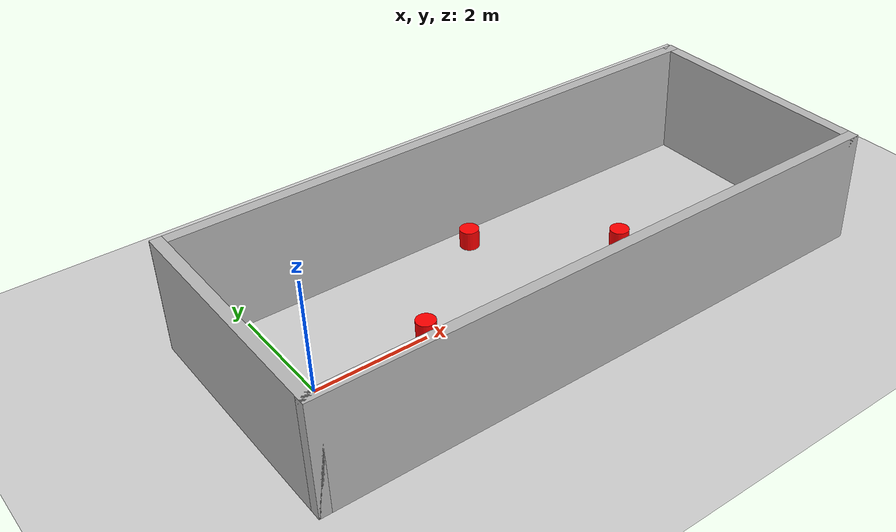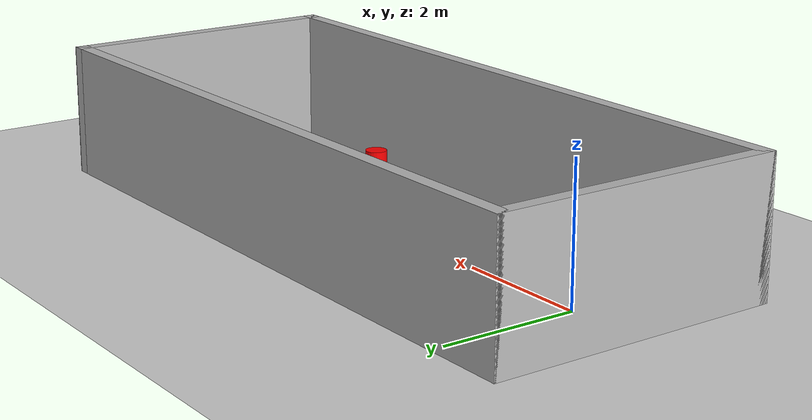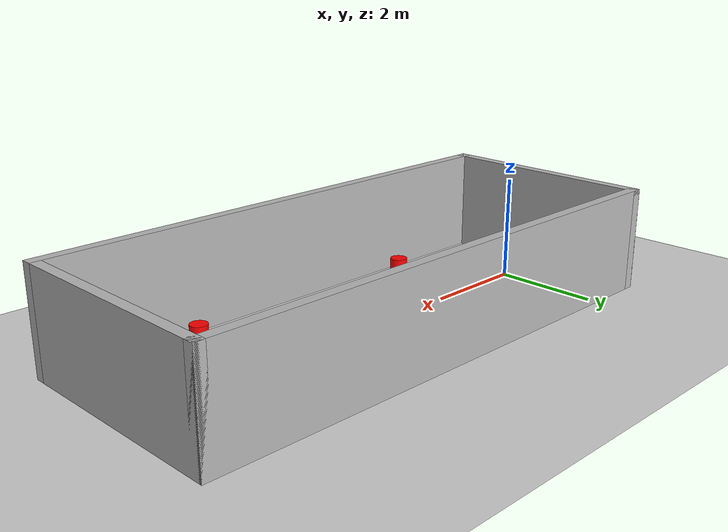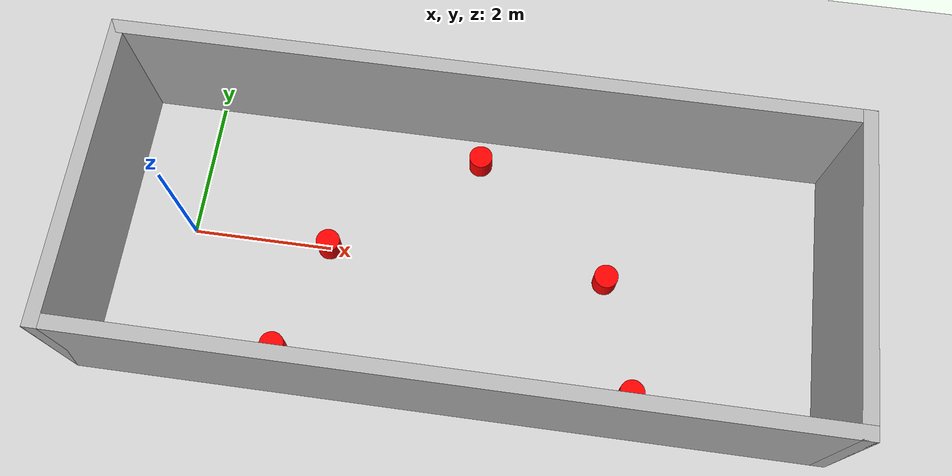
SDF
<?xml version="1.0" ?>
<sdf version="1.9">
  <world name="test_corridor_cyc_mixed5_v015">
    <physics name="1ms" type="ignored">
      <max_step_size>0.001</max_step_size>
      <real_time_factor>1</real_time_factor>
      <real_time_update_rate>1000</real_time_update_rate>
    </physics>

    <plugin name="ignition::gazebo::systems::Physics" filename="ignition-gazebo-physics-system"/>
    <plugin name="ignition::gazebo::systems::UserCommands" filename="ignition-gazebo-user-commands-system"/>
    <plugin name="ignition::gazebo::systems::SceneBroadcaster" filename="ignition-gazebo-scene-broadcaster-system"/>
    <plugin name="ignition::gazebo::systems::Contact" filename="ignition-gazebo-contact-system"/>

    <light name="sun" type="directional">
      <pose>0 0 10 0 0 0</pose>
      <cast_shadows>true</cast_shadows>
      <intensity>1.1</intensity>
      <direction>-0.5 0.1 -0.9</direction>
      <diffuse>0.9 0.9 0.9 1</diffuse>
      <specular>0.2 0.2 0.2 1</specular>
    </light>

    <model name="ground_plane">
      <static>true</static>
      <link name="link">
        <collision name="collision"><geometry><plane><normal>0 0 1</normal><size>100.0 100.0</size></plane></geometry></collision>
        <visual name="visual">
          <geometry><plane><normal>0 0 1</normal><size>100.0 100.0</size></plane></geometry>
          <material><ambient>0.82 0.82 0.82 1</ambient><diffuse>0.82 0.82 0.82 1</diffuse></material>
        </visual>
      </link>
    </model>

    <model name='corridor_border'>
      <static>true</static>
      <link name='north'><pose>4.0 2.1 1 0 0 0</pose><collision name='c'><geometry><box><size>10.4 0.2 2</size></box></geometry></collision><visual name='v'><geometry><box><size>10.4 0.2 2</size></box></geometry></visual></link>
      <link name='south'><pose>4.0 -2.1 1 0 0 0</pose><collision name='c'><geometry><box><size>10.4 0.2 2</size></box></geometry></collision><visual name='v'><geometry><box><size>10.4 0.2 2</size></box></geometry></visual></link>
      <link name='west'><pose>-1.1 0 1 0 0 0</pose><collision name='c'><geometry><box><size>0.2 4.4 2</size></box></geometry></collision><visual name='v'><geometry><box><size>0.2 4.4 2</size></box></geometry></visual></link>
      <link name='east'><pose>9.1 0 1 0 0 0</pose><collision name='c'><geometry><box><size>0.2 4.4 2</size></box></geometry></collision><visual name='v'><geometry><box><size>0.2 4.4 2</size></box></geometry></visual></link>
    </model>

    <model name="obstacle_0">
      <pose>1.500 -1.600 0.170 0 0 1.570796</pose>
      <link name="link">
        <kinematic>true</kinematic>

        <inertial>
          <mass>10.0</mass>
          <inertia>
            <ixx>1.0</ixx><iyy>1.0</iyy><izz>1.0</izz>
            <ixy>0.0</ixy><ixz>0.0</ixz><iyz>0.0</iyz>
          </inertia>
        </inertial>

        <collision name="collision">
          <geometry><cylinder><radius>0.17</radius><length>0.34</length></cylinder></geometry>
        </collision>

        <visual name="visual">
          <geometry><cylinder><radius>0.17</radius><length>0.34</length></cylinder></geometry>
          <material>
            <ambient>1 0 0 1</ambient>
            <diffuse>1 0 0 1</diffuse>
            <specular>0.2 0.2 0.2 1</specular>
          </material>
        </visual>
      </link>

      <plugin filename="ignition-gazebo-velocity-control-system"
              name="ignition::gazebo::systems::VelocityControl">
        <topic>/obstacle_0/cmd_vel</topic>
      </plugin>
    </model>
    <model name="obstacle_1">
      <pose>4.000 1.600 0.170 0 0 -1.570796</pose>
      <link name="link">
        <kinematic>true</kinematic>

        <inertial>
          <mass>10.0</mass>
          <inertia>
            <ixx>1.0</ixx><iyy>1.0</iyy><izz>1.0</izz>
            <ixy>0.0</ixy><ixz>0.0</ixz><iyz>0.0</iyz>
          </inertia>
        </inertial>

        <collision name="collision">
          <geometry><cylinder><radius>0.17</radius><length>0.34</length></cylinder></geometry>
        </collision>

        <visual name="visual">
          <geometry><cylinder><radius>0.17</radius><length>0.34</length></cylinder></geometry>
          <material>
            <ambient>1 0 0 1</ambient>
            <diffuse>1 0 0 1</diffuse>
            <specular>0.2 0.2 0.2 1</specular>
          </material>
        </visual>
      </link>

      <plugin filename="ignition-gazebo-velocity-control-system"
              name="ignition::gazebo::systems::VelocityControl">
        <topic>/obstacle_1/cmd_vel</topic>
      </plugin>
    </model>
    <model name="obstacle_2">
      <pose>6.500 -1.600 0.170 0 0 1.570796</pose>
      <link name="link">
        <kinematic>true</kinematic>

        <inertial>
          <mass>10.0</mass>
          <inertia>
            <ixx>1.0</ixx><iyy>1.0</iyy><izz>1.0</izz>
            <ixy>0.0</ixy><ixz>0.0</ixz><iyz>0.0</iyz>
          </inertia>
        </inertial>

        <collision name="collision">
          <geometry><cylinder><radius>0.17</radius><length>0.34</length></cylinder></geometry>
        </collision>

        <visual name="visual">
          <geometry><cylinder><radius>0.17</radius><length>0.34</length></cylinder></geometry>
          <material>
            <ambient>1 0 0 1</ambient>
            <diffuse>1 0 0 1</diffuse>
            <specular>0.2 0.2 0.2 1</specular>
          </material>
        </visual>
      </link>

      <plugin filename="ignition-gazebo-velocity-control-system"
              name="ignition::gazebo::systems::VelocityControl">
        <topic>/obstacle_2/cmd_vel</topic>
      </plugin>
    </model>
    <model name="obstacle_3">
      <pose>2.000 0.000 0.170 0 0 0.000000</pose>
      <link name="link">
        <kinematic>true</kinematic>

        <inertial>
          <mass>10.0</mass>
          <inertia>
            <ixx>1.0</ixx><iyy>1.0</iyy><izz>1.0</izz>
            <ixy>0.0</ixy><ixz>0.0</ixz><iyz>0.0</iyz>
          </inertia>
        </inertial>

        <collision name="collision">
          <geometry><cylinder><radius>0.17</radius><length>0.34</length></cylinder></geometry>
        </collision>

        <visual name="visual">
          <geometry><cylinder><radius>0.17</radius><length>0.34</length></cylinder></geometry>
          <material>
            <ambient>1 0 0 1</ambient>
            <diffuse>1 0 0 1</diffuse>
            <specular>0.2 0.2 0.2 1</specular>
          </material>
        </visual>
      </link>

      <plugin filename="ignition-gazebo-velocity-control-system"
              name="ignition::gazebo::systems::VelocityControl">
        <topic>/obstacle_3/cmd_vel</topic>
      </plugin>
    </model>
    <model name="obstacle_4">
      <pose>6.000 0.000 0.170 0 0 3.141593</pose>
      <link name="link">
        <kinematic>true</kinematic>

        <inertial>
          <mass>10.0</mass>
          <inertia>
            <ixx>1.0</ixx><iyy>1.0</iyy><izz>1.0</izz>
            <ixy>0.0</ixy><ixz>0.0</ixz><iyz>0.0</iyz>
          </inertia>
        </inertial>

        <collision name="collision">
          <geometry><cylinder><radius>0.17</radius><length>0.34</length></cylinder></geometry>
        </collision>

        <visual name="visual">
          <geometry><cylinder><radius>0.17</radius><length>0.34</length></cylinder></geometry>
          <material>
            <ambient>1 0 0 1</ambient>
            <diffuse>1 0 0 1</diffuse>
            <specular>0.2 0.2 0.2 1</specular>
          </material>
        </visual>
      </link>

      <plugin filename="ignition-gazebo-velocity-control-system"
              name="ignition::gazebo::systems::VelocityControl">
        <topic>/obstacle_4/cmd_vel</topic>
      </plugin>
    </model>
  </world>
</sdf>
